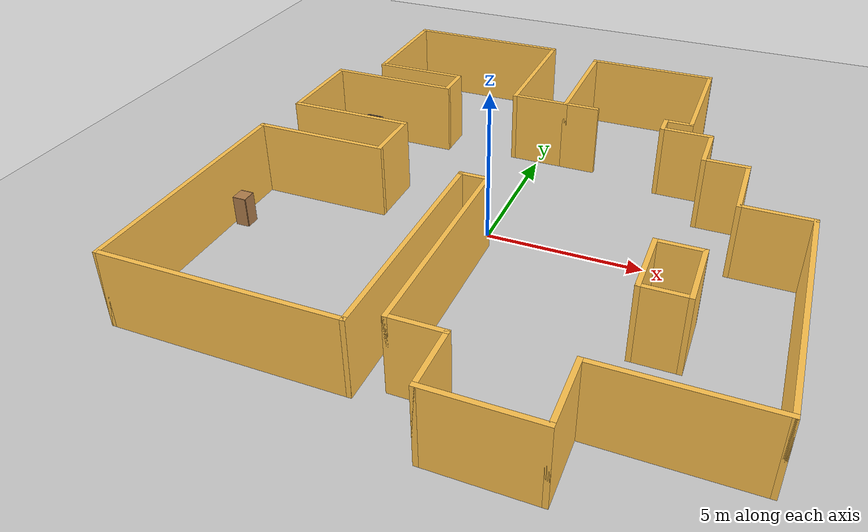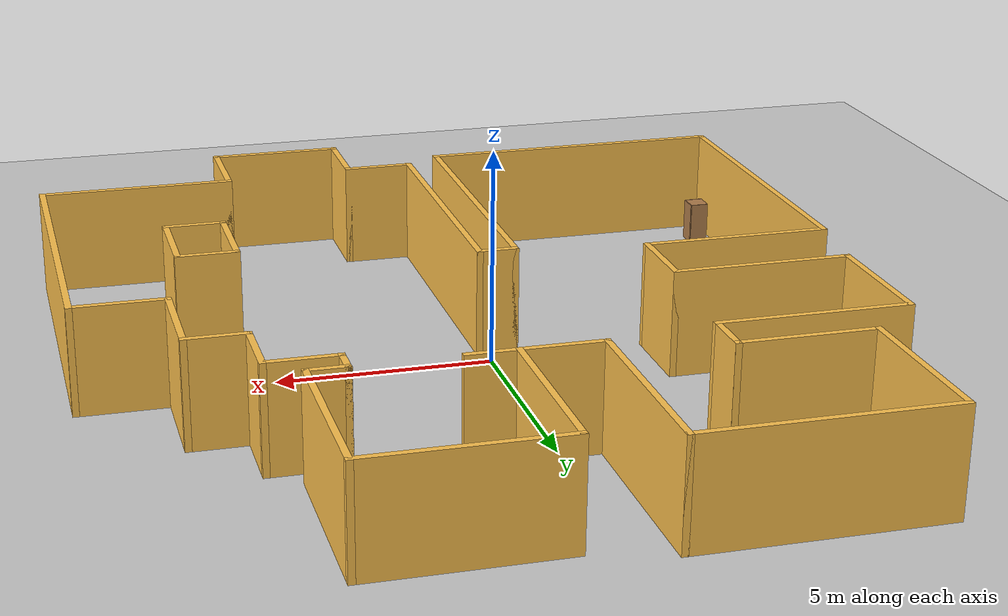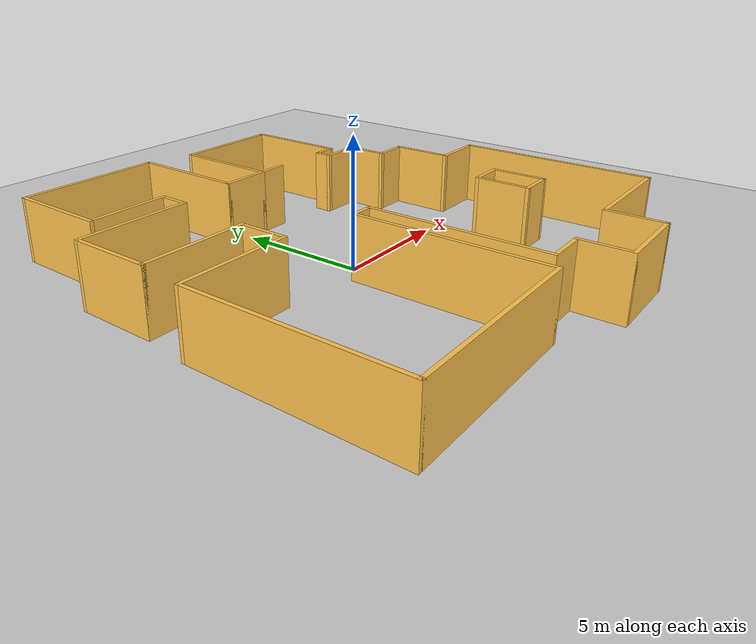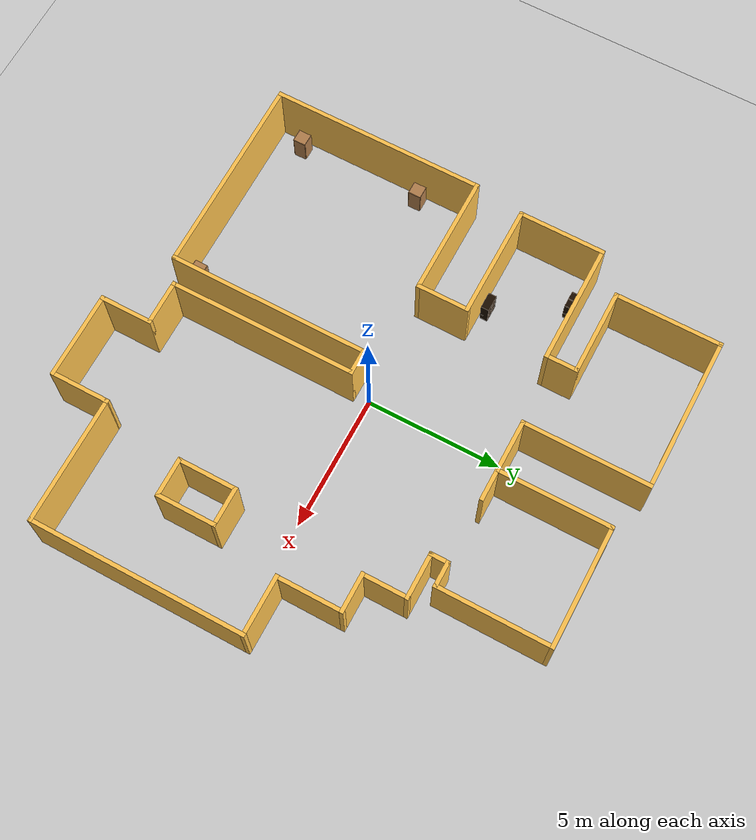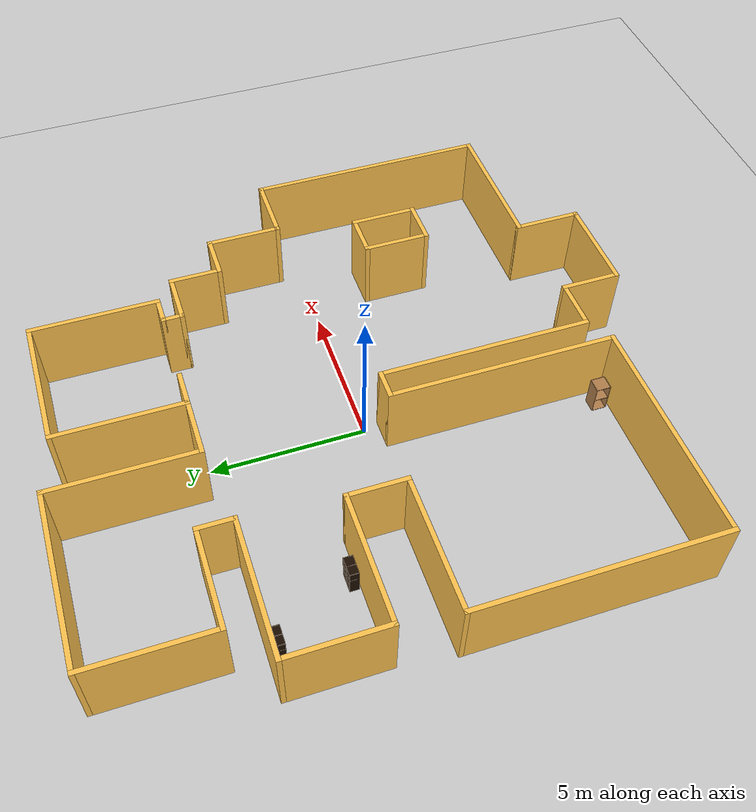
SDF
<sdf version="1.6">
 <world name="default">
  <light name="sun" type="directional">
   <pose>0 0 10 0 -0 0</pose>
   <diffuse>0.8 0.8 0.8 1</diffuse>
   <specular>0.2 0.2 0.2 1</specular>
   <attenuation>
    <range>1000</range>
    <constant>0.9</constant>
    <linear>0.01</linear>
    <quadratic>0.001</quadratic>
   </attenuation>
   <direction>-0.5 0.1 -0.9</direction>
  </light>
  <model name="ground_plane">
   <static>1</static>
   <link name="link">
    <collision name="collision">
     <geometry><plane><normal>0 0 1</normal><size>100 100</size></plane></geometry>
     <surface>
      <contact><collide_bitmask>65535</collide_bitmask></contact>
      <friction><ode><mu>100</mu><mu2>50</mu2></ode></friction>
     </surface>
    </collision>
    <visual name="visual">
     <cast_shadows>0</cast_shadows>
     <geometry><plane><normal>0 0 1</normal><size>100 100</size></plane></geometry>
     <material>
      <script><uri>file://media/materials/scripts/gazebo.material</uri><name>Gazebo/Grey</name></script>
     </material>
    </visual>
   </link>
  </model>
  <gravity>0 0 -9.8</gravity>
  <magnetic_field>6e-06 2.3e-05 -4.2e-05</magnetic_field>
  <atmosphere type="adiabatic"/>
  <physics name="default_physics" default="0" type="ode">
   <max_step_size>0.001</max_step_size>
   <real_time_factor>1</real_time_factor>
   <real_time_update_rate>1000</real_time_update_rate>
  </physics>
  <scene><ambient>0.4 0.4 0.4 1</ambient><background>0.7 0.7 0.7 1</background><shadows>1</shadows></scene>
  <audio><device>default</device></audio>
  <spherical_coordinates>
   <surface_model>EARTH_WGS84</surface_model>
   <latitude_deg>0</latitude_deg>
   <longitude_deg>0</longitude_deg>
   <elevation>0</elevation>
   <heading_deg>0</heading_deg>
  </spherical_coordinates>
  <model name="map_112">
   <pose>0.711208 0.280525 0 0 -0 0</pose>
   <link name="Wall_10">
    <collision name="Wall_10_Collision">
     <geometry><box><size>1.25 0.15 2.5</size></box></geometry>
     <pose>0 0 1.25 0 -0 0</pose>
    </collision>
    <visual name="Wall_10_Visual">
     <pose>0 0 1.25 0 -0 0</pose>
     <geometry><box><size>1.25 0.15 2.5</size></box></geometry>
     <material>
      <script><uri>file://media/materials/scripts/gazebo.material</uri><name>Gazebo/Grey</name></script>
      <ambient>1 0.764706 0.305882 1</ambient>
     </material>
     <meta><layer>0</layer></meta>
    </visual>
    <pose>-4.15 5.15 0 0 -0 -1.5708</pose>
   </link>
   <link name="Wall_11">
    <collision name="Wall_11_Collision">
     <geometry><box><size>4.5 0.15 2.5</size></box></geometry>
     <pose>0 0 1.25 0 -0 0</pose>
    </collision>
    <visual name="Wall_11_Visual">
     <pose>0 0 1.25 0 -0 0</pose>
     <geometry><box><size>4.5 0.15 2.5</size></box></geometry>
     <material>
      <script><uri>file://media/materials/scripts/gazebo.material</uri><name>Gazebo/Grey</name></script>
      <ambient>1 0.764706 0.305882 1</ambient>
     </material>
     <meta><layer>0</layer></meta>
    </visual>
    <pose>-6.325 4.6 0 0 -0 3.14159</pose>
   </link>
   <link name="Wall_12">
    <collision name="Wall_12_Collision">
     <geometry><box><size>3.25 0.15 2.5</size></box></geometry>
     <pose>0 0 1.25 0 -0 0</pose>
    </collision>
    <visual name="Wall_12_Visual">
     <pose>0 0 1.25 0 -0 0</pose>
     <geometry><box><size>3.25 0.15 2.5</size></box></geometry>
     <material>
      <script><uri>file://media/materials/scripts/gazebo.material</uri><name>Gazebo/Grey</name></script>
      <ambient>1 0.764706 0.305882 1</ambient>
     </material>
     <meta><layer>0</layer></meta>
    </visual>
    <pose>-8.5 3.05 0 0 -0 -1.5708</pose>
   </link>
   <link name="Wall_13">
    <collision name="Wall_13_Collision">
     <geometry><box><size>4.25 0.15 2.5</size></box></geometry>
     <pose>0 0 1.25 0 -0 0</pose>
    </collision>
    <visual name="Wall_13_Visual">
     <pose>0 0 1.25 0 -0 0</pose>
     <geometry><box><size>4.25 0.15 2.5</size></box></geometry>
     <material>
      <script><uri>file://media/materials/scripts/gazebo.material</uri><name>Gazebo/Grey</name></script>
      <ambient>1 0.764706 0.305882 1</ambient>
     </material>
     <meta><layer>0</layer></meta>
    </visual>
    <pose>-6.45 1.5 0 0 -0 0</pose>
   </link>
   <link name="Wall_14">
    <collision name="Wall_14_Collision">
     <geometry><box><size>2 0.15 2.5</size></box></geometry>
     <pose>0 0 1.25 0 -0 0</pose>
    </collision>
    <visual name="Wall_14_Visual">
     <pose>0 0 1.25 0 -0 0</pose>
     <geometry><box><size>2 0.15 2.5</size></box></geometry>
     <material>
      <script><uri>file://media/materials/scripts/gazebo.material</uri><name>Gazebo/Grey</name></script>
      <ambient>1 0.764706 0.305882 1</ambient>
     </material>
     <meta><layer>0</layer></meta>
    </visual>
    <pose>-4.4 0.575 0 0 -0 -1.5708</pose>
   </link>
   <link name="Wall_15">
    <collision name="Wall_15_Collision">
     <geometry><box><size>4.5 0.15 2.5</size></box></geometry>
     <pose>0 0 1.25 0 -0 0</pose>
    </collision>
    <visual name="Wall_15_Visual">
     <pose>0 0 1.25 0 -0 0</pose>
     <geometry><box><size>4.5 0.15 2.5</size></box></geometry>
     <material>
      <script><uri>file://media/materials/scripts/gazebo.material</uri><name>Gazebo/Grey</name></script>
      <ambient>1 0.764706 0.305882 1</ambient>
     </material>
     <meta><layer>0</layer></meta>
    </visual>
    <pose>-6.575 -0.35 0 0 -0 3.14159</pose>
   </link>
   <link name="Wall_16">
    <collision name="Wall_16_Collision">
     <geometry><box><size>8 0.15 2.5</size></box></geometry>
     <pose>0 0 1.25 0 -0 0</pose>
    </collision>
    <visual name="Wall_16_Visual">
     <pose>0 0 1.25 0 -0 0</pose>
     <geometry><box><size>8 0.15 2.5</size></box></geometry>
     <material>
      <script><uri>file://media/materials/scripts/gazebo.material</uri><name>Gazebo/Grey</name></script>
      <ambient>1 0.764706 0.305882 1</ambient>
     </material>
     <meta><layer>0</layer></meta>
    </visual>
    <pose>-8.75 -4.275 0 0 -0 -1.5708</pose>
   </link>
   <link name="Wall_17">
    <collision name="Wall_17_Collision">
     <geometry><box><size>7.5 0.15 2.5</size></box></geometry>
     <pose>0 0 1.25 0 -0 0</pose>
    </collision>
    <visual name="Wall_17_Visual">
     <pose>0 0 1.25 0 -0 0</pose>
     <geometry><box><size>7.5 0.15 2.5</size></box></geometry>
     <material>
      <script><uri>file://media/materials/scripts/gazebo.material</uri><name>Gazebo/Grey</name></script>
      <ambient>1 0.764706 0.305882 1</ambient>
     </material>
     <meta><layer>0</layer></meta>
    </visual>
    <pose>-5.075 -8.2 0 0 -0 0</pose>
   </link>
   <link name="Wall_18">
    <collision name="Wall_18_Collision">
     <geometry><box><size>7.5 0.15 2.5</size></box></geometry>
     <pose>0 0 1.25 0 -0 0</pose>
    </collision>
    <visual name="Wall_18_Visual">
     <pose>0 0 1.25 0 -0 0</pose>
     <geometry><box><size>7.5 0.15 2.5</size></box></geometry>
     <material>
      <script><uri>file://media/materials/scripts/gazebo.material</uri><name>Gazebo/Grey</name></script>
      <ambient>1 0.764706 0.305882 1</ambient>
     </material>
     <meta><layer>0</layer></meta>
    </visual>
    <pose>-1.4 -4.525 0 0 -0 1.5708</pose>
   </link>
   <link name="Wall_19">
    <collision name="Wall_19_Collision">
     <geometry><box><size>1 0.15 2.5</size></box></geometry>
     <pose>0 0 1.25 0 -0 0</pose>
    </collision>
    <visual name="Wall_19_Visual">
     <pose>0 0 1.25 0 -0 0</pose>
     <geometry><box><size>1 0.15 2.5</size></box></geometry>
     <material>
      <script><uri>file://media/materials/scripts/gazebo.material</uri><name>Gazebo/Grey</name></script>
      <ambient>1 0.764706 0.305882 1</ambient>
     </material>
     <meta><layer>0</layer></meta>
    </visual>
    <pose>-0.975 -0.85 0 0 -0 0</pose>
   </link>
   <link name="Wall_20">
    <collision name="Wall_20_Collision">
     <geometry><box><size>7 0.15 2.5</size></box></geometry>
     <pose>0 0 1.25 0 -0 0</pose>
    </collision>
    <visual name="Wall_20_Visual">
     <pose>0 0 1.25 0 -0 0</pose>
     <geometry><box><size>7 0.15 2.5</size></box></geometry>
     <material>
      <script><uri>file://media/materials/scripts/gazebo.material</uri><name>Gazebo/Grey</name></script>
      <ambient>1 0.764706 0.305882 1</ambient>
     </material>
     <meta><layer>0</layer></meta>
    </visual>
    <pose>-0.55 -4.275 0 0 -0 -1.5708</pose>
   </link>
   <link name="Wall_21">
    <collision name="Wall_21_Collision">
     <geometry><box><size>1.75 0.15 2.5</size></box></geometry>
     <pose>0 0 1.25 0 -0 0</pose>
    </collision>
    <visual name="Wall_21_Visual">
     <pose>0 0 1.25 0 -0 0</pose>
     <geometry><box><size>1.75 0.15 2.5</size></box></geometry>
     <material>
      <script><uri>file://media/materials/scripts/gazebo.material</uri><name>Gazebo/Grey</name></script>
      <ambient>1 0.764706 0.305882 1</ambient>
     </material>
     <meta><layer>0</layer></meta>
    </visual>
    <pose>0.25 -7.7 0 0 -0 0</pose>
   </link>
   <link name="Wall_24">
    <collision name="Wall_24_Collision">
     <geometry><box><size>2 0.15 2.5</size></box></geometry>
     <pose>0 0 1.25 0 -0 0</pose>
    </collision>
    <visual name="Wall_24_Visual">
     <pose>0 0 1.25 0 -0 0</pose>
     <geometry><box><size>2 0.15 2.5</size></box></geometry>
     <material>
      <script><uri>file://media/materials/scripts/gazebo.material</uri><name>Gazebo/Grey</name></script>
      <ambient>1 0.764706 0.305882 1</ambient>
     </material>
     <meta><layer>0</layer></meta>
    </visual>
    <pose>1.05 -8.625 0 0 -0 -1.5708</pose>
   </link>
   <link name="Wall_25">
    <collision name="Wall_25_Collision">
     <geometry><box><size>3.25 0.15 2.5</size></box></geometry>
     <pose>0 0 1.25 0 -0 0</pose>
    </collision>
    <visual name="Wall_25_Visual">
     <pose>0 0 1.25 0 -0 0</pose>
     <geometry><box><size>3.25 0.15 2.5</size></box></geometry>
     <material>
      <script><uri>file://media/materials/scripts/gazebo.material</uri><name>Gazebo/Grey</name></script>
      <ambient>1 0.764706 0.305882 1</ambient>
     </material>
     <meta><layer>0</layer></meta>
    </visual>
    <pose>2.6 -9.55 0 0 -0 0</pose>
   </link>
   <link name="Wall_26">
    <collision name="Wall_26_Collision">
     <geometry><box><size>2.25 0.15 2.5</size></box></geometry>
     <pose>0 0 1.25 0 -0 0</pose>
    </collision>
    <visual name="Wall_26_Visual">
     <pose>0 0 1.25 0 -0 0</pose>
     <geometry><box><size>2.25 0.15 2.5</size></box></geometry>
     <material>
      <script><uri>file://media/materials/scripts/gazebo.material</uri><name>Gazebo/Grey</name></script>
      <ambient>1 0.764706 0.305882 1</ambient>
     </material>
     <meta><layer>0</layer></meta>
    </visual>
    <pose>4.15 -8.5 0 0 -0 1.5708</pose>
   </link>
   <link name="Wall_27">
    <collision name="Wall_27_Collision">
     <geometry><box><size>4.75 0.15 2.5</size></box></geometry>
     <pose>0 0 1.25 0 -0 0</pose>
    </collision>
    <visual name="Wall_27_Visual">
     <pose>0 0 1.25 0 -0 0</pose>
     <geometry><box><size>4.75 0.15 2.5</size></box></geometry>
     <material>
      <script><uri>file://media/materials/scripts/gazebo.material</uri><name>Gazebo/Grey</name></script>
      <ambient>1 0.764706 0.305882 1</ambient>
     </material>
     <meta><layer>0</layer></meta>
    </visual>
    <pose>6.45 -7.45 0 0 -0 0</pose>
   </link>
   <link name="Wall_28">
    <collision name="Wall_28_Collision">
     <geometry><box><size>8 0.15 2.5</size></box></geometry>
     <pose>0 0 1.25 0 -0 0</pose>
    </collision>
    <visual name="Wall_28_Visual">
     <pose>0 0 1.25 0 -0 0</pose>
     <geometry><box><size>8 0.15 2.5</size></box></geometry>
     <material>
      <script><uri>file://media/materials/scripts/gazebo.material</uri><name>Gazebo/Grey</name></script>
      <ambient>1 0.764706 0.305882 1</ambient>
     </material>
     <meta><layer>0</layer></meta>
    </visual>
    <pose>8.75 -3.525 0 0 -0 1.5708</pose>
   </link>
   <link name="Wall_29">
    <collision name="Wall_29_Collision">
     <geometry><box><size>2.25 0.15 2.5</size></box></geometry>
     <pose>0 0 1.25 0 -0 0</pose>
    </collision>
    <visual name="Wall_29_Visual">
     <pose>0 0 1.25 0 -0 0</pose>
     <geometry><box><size>2.25 0.15 2.5</size></box></geometry>
     <material>
      <script><uri>file://media/materials/scripts/gazebo.material</uri><name>Gazebo/Grey</name></script>
      <ambient>1 0.764706 0.305882 1</ambient>
     </material>
     <meta><layer>0</layer></meta>
    </visual>
    <pose>7.7 0.4 0 0 -0 3.14159</pose>
   </link>
   <link name="Wall_35">
    <collision name="Wall_35_Collision">
     <geometry><box><size>2.5 0.15 2.5</size></box></geometry>
     <pose>0 0 1.25 0 -0 0</pose>
    </collision>
    <visual name="Wall_35_Visual">
     <pose>0 0 1.25 0 -0 0</pose>
     <geometry><box><size>2.5 0.15 2.5</size></box></geometry>
     <material>
      <script><uri>file://media/materials/scripts/gazebo.material</uri><name>Gazebo/Grey</name></script>
      <ambient>1 0.764706 0.305882 1</ambient>
     </material>
     <meta><layer>0</layer></meta>
    </visual>
    <pose>6.65 1.575 0 0 -0 1.5708</pose>
   </link>
   <link name="Wall_36">
    <collision name="Wall_36_Collision">
     <geometry><box><size>1.5 0.15 2.5</size></box></geometry>
     <pose>0 0 1.25 0 -0 0</pose>
    </collision>
    <visual name="Wall_36_Visual">
     <pose>0 0 1.25 0 -0 0</pose>
     <geometry><box><size>1.5 0.15 2.5</size></box></geometry>
     <material>
      <script><uri>file://media/materials/scripts/gazebo.material</uri><name>Gazebo/Grey</name></script>
      <ambient>1 0.764706 0.305882 1</ambient>
     </material>
     <meta><layer>0</layer></meta>
    </visual>
    <pose>5.975 2.75 0 0 -0 3.14159</pose>
   </link>
   <link name="Wall_37">
    <collision name="Wall_37_Collision">
     <geometry><box><size>1.75 0.15 2.5</size></box></geometry>
     <pose>0 0 1.25 0 -0 0</pose>
    </collision>
    <visual name="Wall_37_Visual">
     <pose>0 0 1.25 0 -0 0</pose>
     <geometry><box><size>1.75 0.15 2.5</size></box></geometry>
     <material>
      <script><uri>file://media/materials/scripts/gazebo.material</uri><name>Gazebo/Grey</name></script>
      <ambient>1 0.764706 0.305882 1</ambient>
     </material>
     <meta><layer>0</layer></meta>
    </visual>
    <pose>5.3 3.55 0 0 -0 1.5708</pose>
   </link>
   <link name="Wall_42">
    <collision name="Wall_42_Collision">
     <geometry><box><size>1.75 0.15 2.5</size></box></geometry>
     <pose>0 0 1.25 0 -0 0</pose>
    </collision>
    <visual name="Wall_42_Visual">
     <pose>0 0 1.25 0 -0 0</pose>
     <geometry><box><size>1.75 0.15 2.5</size></box></geometry>
     <material>
      <script><uri>file://media/materials/scripts/gazebo.material</uri><name>Gazebo/Grey</name></script>
      <ambient>1 0.764706 0.305882 1</ambient>
     </material>
     <meta><layer>0</layer></meta>
    </visual>
    <pose>4.5 4.35 0 0 -0 3.14159</pose>
   </link>
   <link name="Wall_43">
    <collision name="Wall_43_Collision">
     <geometry><box><size>0.75 0.15 2.5</size></box></geometry>
     <pose>0 0 1.25 0 -0 0</pose>
    </collision>
    <visual name="Wall_43_Visual">
     <pose>0 0 1.25 0 -0 0</pose>
     <geometry><box><size>0.75 0.15 2.5</size></box></geometry>
     <material>
      <script><uri>file://media/materials/scripts/gazebo.material</uri><name>Gazebo/Grey</name></script>
      <ambient>1 0.764706 0.305882 1</ambient>
     </material>
     <meta><layer>0</layer></meta>
    </visual>
    <pose>3.7 4.65 0 0 -0 1.5708</pose>
   </link>
   <link name="Wall_44">
    <collision name="Wall_44_Collision">
     <geometry><box><size>1 0.15 2.5</size></box></geometry>
     <pose>0 0 1.25 0 -0 0</pose>
    </collision>
    <visual name="Wall_44_Visual">
     <pose>0 0 1.25 0 -0 0</pose>
     <geometry><box><size>1 0.15 2.5</size></box></geometry>
     <material>
      <script><uri>file://media/materials/scripts/gazebo.material</uri><name>Gazebo/Grey</name></script>
      <ambient>1 0.764706 0.305882 1</ambient>
     </material>
     <meta><layer>0</layer></meta>
    </visual>
    <pose>4.125 4.95 0 0 -0 0</pose>
   </link>
   <link name="Wall_45">
    <collision name="Wall_45_Collision">
     <geometry><box><size>4.25 0.15 2.5</size></box></geometry>
     <pose>0 0 1.25 0 -0 0</pose>
    </collision>
    <visual name="Wall_45_Visual">
     <pose>0 0 1.25 0 -0 0</pose>
     <geometry><box><size>4.25 0.15 2.5</size></box></geometry>
     <material>
      <script><uri>file://media/materials/scripts/gazebo.material</uri><name>Gazebo/Grey</name></script>
      <ambient>1 0.764706 0.305882 1</ambient>
     </material>
     <meta><layer>0</layer></meta>
    </visual>
    <pose>4.55 7 0 0 -0 1.5708</pose>
   </link>
   <link name="Wall_46">
    <collision name="Wall_46_Collision">
     <geometry><box><size>4.5 0.15 2.5</size></box></geometry>
     <pose>0 0 1.25 0 -0 0</pose>
    </collision>
    <visual name="Wall_46_Visual">
     <pose>0 0 1.25 0 -0 0</pose>
     <geometry><box><size>4.5 0.15 2.5</size></box></geometry>
     <material>
      <script><uri>file://media/materials/scripts/gazebo.material</uri><name>Gazebo/Grey</name></script>
      <ambient>1 0.764706 0.305882 1</ambient>
     </material>
     <meta><layer>0</layer></meta>
    </visual>
    <pose>2.375 9.05 0 0 -0 3.14159</pose>
   </link>
   <link name="Wall_47">
    <collision name="Wall_47_Collision">
     <geometry><box><size>4.25 0.15 2.5</size></box></geometry>
     <pose>0 0 1.25 0 -0 0</pose>
    </collision>
    <visual name="Wall_47_Visual">
     <pose>0 0 1.25 0 -0 0</pose>
     <geometry><box><size>4.25 0.15 2.5</size></box></geometry>
     <material>
      <script><uri>file://media/materials/scripts/gazebo.material</uri><name>Gazebo/Grey</name></script>
      <ambient>1 0.764706 0.305882 1</ambient>
     </material>
     <meta><layer>0</layer></meta>
    </visual>
    <pose>0.2 7 0 0 -0 -1.5708</pose>
   </link>
   <link name="Wall_48">
    <collision name="Wall_48_Collision">
     <geometry><box><size>1.25 0.15 2.5</size></box></geometry>
     <pose>0 0 1.25 0 -0 0</pose>
    </collision>
    <visual name="Wall_48_Visual">
     <pose>0 0 1.25 0 -0 0</pose>
     <geometry><box><size>1.25 0.15 2.5</size></box></geometry>
     <material>
      <script><uri>file://media/materials/scripts/gazebo.material</uri><name>Gazebo/Grey</name></script>
      <ambient>1 0.764706 0.305882 1</ambient>
     </material>
     <meta><layer>0</layer></meta>
    </visual>
    <pose>0.75 4.95 0 0 -0 0</pose>
   </link>
   <link name="Wall_52">
    <collision name="Wall_52_Collision">
     <geometry><box><size>5.75 0.15 2.5</size></box></geometry>
     <pose>0 0 1.25 0 -0 0</pose>
    </collision>
    <visual name="Wall_52_Visual">
     <pose>0 0 1.25 0 -0 0</pose>
     <geometry><box><size>5.75 0.15 2.5</size></box></geometry>
     <material>
      <script><uri>file://media/materials/scripts/gazebo.material</uri><name>Gazebo/Grey</name></script>
      <ambient>1 0.764706 0.305882 1</ambient>
     </material>
     <meta><layer>0</layer></meta>
    </visual>
    <pose>-4.45 9.55 0 0 -0 0</pose>
   </link>
   <link name="Wall_53">
    <collision name="Wall_53_Collision">
     <geometry><box><size>4.75 0.15 2.5</size></box></geometry>
     <pose>0 0 1.25 0 -0 0</pose>
    </collision>
    <visual name="Wall_53_Visual">
     <pose>0 0 1.25 0 -0 0</pose>
     <geometry><box><size>4.75 0.15 2.5</size></box></geometry>
     <material>
      <script><uri>file://media/materials/scripts/gazebo.material</uri><name>Gazebo/Grey</name></script>
      <ambient>1 0.764706 0.305882 1</ambient>
     </material>
     <meta><layer>0</layer></meta>
    </visual>
    <pose>-1.65 7.25 0 0 -0 -1.5708</pose>
   </link>
   <link name="Wall_54">
    <collision name="Wall_54_Collision">
     <geometry><box><size>2 0.15 2.5</size></box></geometry>
     <pose>0 0 1.25 0 -0 0</pose>
    </collision>
    <visual name="Wall_54_Visual">
     <pose>0 0 1.25 0 -0 0</pose>
     <geometry><box><size>2 0.15 2.5</size></box></geometry>
     <material>
      <script><uri>file://media/materials/scripts/gazebo.material</uri><name>Gazebo/Grey</name></script>
      <ambient>1 0.764706 0.305882 1</ambient>
     </material>
     <meta><layer>0</layer></meta>
    </visual>
    <pose>-0.725 4.95 0 0 -0 0</pose>
   </link>
   <link name="Wall_56">
    <collision name="Wall_56_Collision">
     <geometry><box><size>2.25 0.15 2.5</size></box></geometry>
     <pose>0 0 1.25 0 -0 0</pose>
    </collision>
    <visual name="Wall_56_Visual">
     <pose>0 0 1.25 0 -0 0</pose>
     <geometry><box><size>2.25 0.15 2.5</size></box></geometry>
     <material>
      <script><uri>file://media/materials/scripts/gazebo.material</uri><name>Gazebo/Grey</name></script>
      <ambient>1 0.764706 0.305882 1</ambient>
     </material>
     <meta><layer>0</layer></meta>
    </visual>
    <pose>4.77046 -3.24625 0 0 -0 -1.5708</pose>
   </link>
   <link name="Wall_57">
    <collision name="Wall_57_Collision">
     <geometry><box><size>1.5 0.15 2.5</size></box></geometry>
     <pose>0 0 1.25 0 -0 0</pose>
    </collision>
    <visual name="Wall_57_Visual">
     <pose>0 0 1.25 0 -0 0</pose>
     <geometry><box><size>1.5 0.15 2.5</size></box></geometry>
     <material>
      <script><uri>file://media/materials/scripts/gazebo.material</uri><name>Gazebo/Grey</name></script>
      <ambient>1 0.764706 0.305882 1</ambient>
     </material>
     <meta><layer>0</layer></meta>
    </visual>
    <pose>5.44545 -4.29624 0 0 -0 0</pose>
   </link>
   <link name="Wall_58">
    <collision name="Wall_58_Collision">
     <geometry><box><size>2.25 0.15 2.5</size></box></geometry>
     <pose>0 0 1.25 0 -0 0</pose>
    </collision>
    <visual name="Wall_58_Visual">
     <pose>0 0 1.25 0 -0 0</pose>
     <geometry><box><size>2.25 0.15 2.5</size></box></geometry>
     <material>
      <script><uri>file://media/materials/scripts/gazebo.material</uri><name>Gazebo/Grey</name></script>
      <ambient>1 0.764706 0.305882 1</ambient>
     </material>
     <meta><layer>0</layer></meta>
    </visual>
    <pose>6.12045 -3.24625 0 0 -0 1.5708</pose>
   </link>
   <link name="Wall_59">
    <collision name="Wall_59_Collision">
     <geometry><box><size>1.5 0.15 2.5</size></box></geometry>
     <pose>0 0 1.25 0 -0 0</pose>
    </collision>
    <visual name="Wall_59_Visual">
     <pose>0 0 1.25 0 -0 0</pose>
     <geometry><box><size>1.5 0.15 2.5</size></box></geometry>
     <material>
      <script><uri>file://media/materials/scripts/gazebo.material</uri><name>Gazebo/Grey</name></script>
      <ambient>1 0.764706 0.305882 1</ambient>
     </material>
     <meta><layer>0</layer></meta>
    </visual>
    <pose>5.44545 -2.19624 0 0 -0 3.14159</pose>
   </link>
   <link name="Wall_8">
    <collision name="Wall_8_Collision">
     <geometry><box><size>4 0.15 2.5</size></box></geometry>
     <pose>0 0 1.25 0 -0 0</pose>
    </collision>
    <visual name="Wall_8_Visual">
     <pose>0 0 1.25 0 -0 0</pose>
     <geometry><box><size>4 0.15 2.5</size></box></geometry>
     <material>
      <script><uri>file://media/materials/scripts/gazebo.material</uri><name>Gazebo/Grey</name></script>
      <ambient>1 0.764706 0.305882 1</ambient>
     </material>
     <meta><layer>0</layer></meta>
    </visual>
    <pose>-7.25 7.625 0 0 -0 -1.5708</pose>
   </link>
   <link name="Wall_9">
    <collision name="Wall_9_Collision">
     <geometry><box><size>3.25 0.15 2.5</size></box></geometry>
     <pose>0 0 1.25 0 -0 0</pose>
    </collision>
    <visual name="Wall_9_Visual">
     <pose>0 0 1.25 0 -0 0</pose>
     <geometry><box><size>3.25 0.15 2.5</size></box></geometry>
     <material>
      <script><uri>file://media/materials/scripts/gazebo.material</uri><name>Gazebo/Grey</name></script>
      <ambient>1 0.764706 0.305882 1</ambient>
     </material>
     <meta><layer>0</layer></meta>
    </visual>
    <pose>-5.7 5.7 0 0 -0 0</pose>
   </link>
   <static>1</static>
  </model>
  <model name="cabinet">
   <static>1</static>
   <link name="cabinet_bottom_plate">
    <inertial>
     <pose>0 0 -1 0 -0 0</pose>
     <inertia><ixx>2.05</ixx><ixy>0</ixy><ixz>0</ixz><iyy>2.05</iyy><iyz>0</iyz><izz>2.05</izz></inertia>
     <mass>25</mass>
    </inertial>
    <collision name="cabinet_bottom_plate_geom">
     <pose>0 0 0.01 0 -0 0</pose>
     <geometry><box><size>0.45 0.45 0.02</size></box></geometry>
    </collision>
    <visual name="cabinet_bottom_plate_geom_visual">
     <pose>0 0 0.01 0 -0 0</pose>
     <geometry><box><size>0.45 0.45 0.02</size></box></geometry>
     <material>
      <script><uri>file://media/materials/scripts/gazebo.material</uri><name>Gazebo/Wood</name></script>
     </material>
    </visual>
    <collision name="cabinet_bottom_plate_geom_cabinet_back_plate">
     <pose>0.235 0 0.51 0 -0 0</pose>
     <geometry><box><size>0.02 0.45 1.02</size></box></geometry>
    </collision>
    <visual name="cabinet_bottom_plate_geom_cabinet_back_plate_visual">
     <pose>0.235 0 0.51 0 -0 0</pose>
     <geometry><box><size>0.02 0.45 1.02</size></box></geometry>
     <material>
      <script><uri>file://media/materials/scripts/gazebo.material</uri><name>Gazebo/Wood</name></script>
     </material>
    </visual>
    <collision name="cabinet_bottom_plate_geom_cabinet_left_plate">
     <pose>0 0.235 0.51 0 -0 0</pose>
     <geometry><box><size>0.45 0.02 1.02</size></box></geometry>
    </collision>
    <visual name="cabinet_bottom_plate_geom_cabinet_left_plate_visual">
     <pose>0 0.235 0.51 0 -0 0</pose>
     <geometry><box><size>0.45 0.02 1.02</size></box></geometry>
     <material>
      <script><uri>file://media/materials/scripts/gazebo.material</uri><name>Gazebo/Wood</name></script>
     </material>
    </visual>
    <collision name="cabinet_bottom_plate_geom_cabinet_middle_plate">
     <pose>0 0 0.51 0 -0 0</pose>
     <geometry><box><size>0.45 0.45 0.02</size></box></geometry>
    </collision>
    <visual name="cabinet_bottom_plate_geom_cabinet_middle_plate_visual">
     <pose>0 0 0.51 0 -0 0</pose>
     <geometry><box><size>0.45 0.45 0.02</size></box></geometry>
     <material>
      <script><uri>file://media/materials/scripts/gazebo.material</uri><name>Gazebo/Wood</name></script>
     </material>
    </visual>
    <collision name="cabinet_bottom_plate_geom_cabinet_right_plate">
     <pose>0 -0.235 0.51 0 -0 0</pose>
     <geometry><box><size>0.45 0.02 1.02</size></box></geometry>
    </collision>
    <visual name="cabinet_bottom_plate_geom_cabinet_right_plate_visual">
     <pose>0 -0.235 0.51 0 -0 0</pose>
     <geometry><box><size>0.45 0.02 1.02</size></box></geometry>
     <material>
      <script><uri>file://media/materials/scripts/gazebo.material</uri><name>Gazebo/Wood</name></script>
     </material>
    </visual>
    <collision name="cabinet_bottom_plate_geom_cabinet_top_plate">
     <pose>0 0 1.01 0 -0 0</pose>
     <geometry><box><size>0.45 0.45 0.02</size></box></geometry>
    </collision>
    <visual name="cabinet_bottom_plate_geom_cabinet_top_plate_visual">
     <pose>0 0 1.01 0 -0 0</pose>
     <geometry><box><size>0.45 0.45 0.02</size></box></geometry>
     <material>
      <script><uri>file://media/materials/scripts/gazebo.material</uri><name>Gazebo/Wood</name></script>
     </material>
    </visual>
   </link>
   <pose>-1.26428 -7.49469 0 0 -0 0</pose>
  </model>
  <model name="cabinet_0">
   <static>1</static>
   <link name="cabinet_bottom_plate">
    <inertial>
     <pose>0 0 -1 0 -0 0</pose>
     <inertia><ixx>2.05</ixx><ixy>0</ixy><ixz>0</ixz><iyy>2.05</iyy><iyz>0</iyz><izz>2.05</izz></inertia>
     <mass>25</mass>
    </inertial>
    <collision name="cabinet_bottom_plate_geom">
     <pose>0 0 0.01 0 -0 0</pose>
     <geometry><box><size>0.45 0.45 0.02</size></box></geometry>
    </collision>
    <visual name="cabinet_bottom_plate_geom_visual">
     <pose>0 0 0.01 0 -0 0</pose>
     <geometry><box><size>0.45 0.45 0.02</size></box></geometry>
     <material>
      <script><uri>file://media/materials/scripts/gazebo.material</uri><name>Gazebo/Wood</name></script>
     </material>
    </visual>
    <collision name="cabinet_bottom_plate_geom_cabinet_back_plate">
     <pose>0.235 0 0.51 0 -0 0</pose>
     <geometry><box><size>0.02 0.45 1.02</size></box></geometry>
    </collision>
    <visual name="cabinet_bottom_plate_geom_cabinet_back_plate_visual">
     <pose>0.235 0 0.51 0 -0 0</pose>
     <geometry><box><size>0.02 0.45 1.02</size></box></geometry>
     <material>
      <script><uri>file://media/materials/scripts/gazebo.material</uri><name>Gazebo/Wood</name></script>
     </material>
    </visual>
    <collision name="cabinet_bottom_plate_geom_cabinet_left_plate">
     <pose>0 0.235 0.51 0 -0 0</pose>
     <geometry><box><size>0.45 0.02 1.02</size></box></geometry>
    </collision>
    <visual name="cabinet_bottom_plate_geom_cabinet_left_plate_visual">
     <pose>0 0.235 0.51 0 -0 0</pose>
     <geometry><box><size>0.45 0.02 1.02</size></box></geometry>
     <material>
      <script><uri>file://media/materials/scripts/gazebo.material</uri><name>Gazebo/Wood</name></script>
     </material>
    </visual>
    <collision name="cabinet_bottom_plate_geom_cabinet_middle_plate">
     <pose>0 0 0.51 0 -0 0</pose>
     <geometry><box><size>0.45 0.45 0.02</size></box></geometry>
    </collision>
    <visual name="cabinet_bottom_plate_geom_cabinet_middle_plate_visual">
     <pose>0 0 0.51 0 -0 0</pose>
     <geometry><box><size>0.45 0.45 0.02</size></box></geometry>
     <material>
      <script><uri>file://media/materials/scripts/gazebo.material</uri><name>Gazebo/Wood</name></script>
     </material>
    </visual>
    <collision name="cabinet_bottom_plate_geom_cabinet_right_plate">
     <pose>0 -0.235 0.51 0 -0 0</pose>
     <geometry><box><size>0.45 0.02 1.02</size></box></geometry>
    </collision>
    <visual name="cabinet_bottom_plate_geom_cabinet_right_plate_visual">
     <pose>0 -0.235 0.51 0 -0 0</pose>
     <geometry><box><size>0.45 0.02 1.02</size></box></geometry>
     <material>
      <script><uri>file://media/materials/scripts/gazebo.material</uri><name>Gazebo/Wood</name></script>
     </material>
    </visual>
    <collision name="cabinet_bottom_plate_geom_cabinet_top_plate">
     <pose>0 0 1.01 0 -0 0</pose>
     <geometry><box><size>0.45 0.45 0.02</size></box></geometry>
    </collision>
    <visual name="cabinet_bottom_plate_geom_cabinet_top_plate_visual">
     <pose>0 0 1.01 0 -0 0</pose>
     <geometry><box><size>0.45 0.45 0.02</size></box></geometry>
     <material>
      <script><uri>file://media/materials/scripts/gazebo.material</uri><name>Gazebo/Wood</name></script>
     </material>
    </visual>
   </link>
   <pose>-7.64034 -2.16353 0 0 -0 0</pose>
  </model>
  <model name="cabinet_1">
   <static>1</static>
   <link name="cabinet_bottom_plate">
    <inertial>
     <pose>0 0 -1 0 -0 0</pose>
     <inertia><ixx>2.05</ixx><ixy>0</ixy><ixz>0</ixz><iyy>2.05</iyy><iyz>0</iyz><izz>2.05</izz></inertia>
     <mass>25</mass>
    </inertial>
    <collision name="cabinet_bottom_plate_geom">
     <pose>0 0 0.01 0 -0 0</pose>
     <geometry><box><size>0.45 0.45 0.02</size></box></geometry>
    </collision>
    <visual name="cabinet_bottom_plate_geom_visual">
     <pose>0 0 0.01 0 -0 0</pose>
     <geometry><box><size>0.45 0.45 0.02</size></box></geometry>
     <material>
      <script><uri>file://media/materials/scripts/gazebo.material</uri><name>Gazebo/Wood</name></script>
     </material>
    </visual>
    <collision name="cabinet_bottom_plate_geom_cabinet_back_plate">
     <pose>0.235 0 0.51 0 -0 0</pose>
     <geometry><box><size>0.02 0.45 1.02</size></box></geometry>
    </collision>
    <visual name="cabinet_bottom_plate_geom_cabinet_back_plate_visual">
     <pose>0.235 0 0.51 0 -0 0</pose>
     <geometry><box><size>0.02 0.45 1.02</size></box></geometry>
     <material>
      <script><uri>file://media/materials/scripts/gazebo.material</uri><name>Gazebo/Wood</name></script>
     </material>
    </visual>
    <collision name="cabinet_bottom_plate_geom_cabinet_left_plate">
     <pose>0 0.235 0.51 0 -0 0</pose>
     <geometry><box><size>0.45 0.02 1.02</size></box></geometry>
    </collision>
    <visual name="cabinet_bottom_plate_geom_cabinet_left_plate_visual">
     <pose>0 0.235 0.51 0 -0 0</pose>
     <geometry><box><size>0.45 0.02 1.02</size></box></geometry>
     <material>
      <script><uri>file://media/materials/scripts/gazebo.material</uri><name>Gazebo/Wood</name></script>
     </material>
    </visual>
    <collision name="cabinet_bottom_plate_geom_cabinet_middle_plate">
     <pose>0 0 0.51 0 -0 0</pose>
     <geometry><box><size>0.45 0.45 0.02</size></box></geometry>
    </collision>
    <visual name="cabinet_bottom_plate_geom_cabinet_middle_plate_visual">
     <pose>0 0 0.51 0 -0 0</pose>
     <geometry><box><size>0.45 0.45 0.02</size></box></geometry>
     <material>
      <script><uri>file://media/materials/scripts/gazebo.material</uri><name>Gazebo/Wood</name></script>
     </material>
    </visual>
    <collision name="cabinet_bottom_plate_geom_cabinet_right_plate">
     <pose>0 -0.235 0.51 0 -0 0</pose>
     <geometry><box><size>0.45 0.02 1.02</size></box></geometry>
    </collision>
    <visual name="cabinet_bottom_plate_geom_cabinet_right_plate_visual">
     <pose>0 -0.235 0.51 0 -0 0</pose>
     <geometry><box><size>0.45 0.02 1.02</size></box></geometry>
     <material>
      <script><uri>file://media/materials/scripts/gazebo.material</uri><name>Gazebo/Wood</name></script>
     </material>
    </visual>
    <collision name="cabinet_bottom_plate_geom_cabinet_top_plate">
     <pose>0 0 1.01 0 -0 0</pose>
     <geometry><box><size>0.45 0.45 0.02</size></box></geometry>
    </collision>
    <visual name="cabinet_bottom_plate_geom_cabinet_top_plate_visual">
     <pose>0 0 1.01 0 -0 0</pose>
     <geometry><box><size>0.45 0.45 0.02</size></box></geometry>
     <material>
      <script><uri>file://media/materials/scripts/gazebo.material</uri><name>Gazebo/Wood</name></script>
     </material>
    </visual>
   </link>
   <pose>-7.56449 -6.84765 0 0 -0 0</pose>
  </model>
  <model name="6_Cube_StorageE">
   <link name="Wall_0">
    <pose>0 0 0.01 0 -0 0</pose>
    <inertial>
     <mass>1.6201</mass>
     <inertia><ixx>0.0119</ixx><iyy>0.0631</iyy><izz>0.0513</izz><ixy>0</ixy><ixz>0</ixz><iyz>0</iyz></inertia>
    </inertial>
    <collision name="Wall_0_Collision"><geometry><box><size>0.616 0.296 0.02</size></box></geometry></collision>
    <visual name="Wall_0_Visual">
     <geometry><box><size>0.616 0.296 0.02</size></box></geometry>
     <material>
      <script><uri>file://media/materials/scripts/gazebo.material</uri><name>Gazebo/Grey</name></script>
      <ambient>0.105882 0.0509804 0 1</ambient>
     </material>
    </visual>
   </link>
   <joint name="0_2" type="fixed">
    <pose>-0.308 0 0 0 -0 0</pose>
    <parent>Wall_2</parent>
    <child>Wall_0</child>
    <axis>
     <xyz>1 0 0</xyz>
     <use_parent_model_frame>0</use_parent_model_frame>
     <limit><lower>-1e+16</lower><upper>1e+16</upper></limit>
    </axis>
   </joint>
   <joint name="0_12" type="fixed">
    <parent>Wall_12</parent>
    <child>Wall_0</child>
    <axis>
     <xyz>0 0 1</xyz>
     <use_parent_model_frame>0</use_parent_model_frame>
     <limit><lower>-1e+16</lower><upper>1e+16</upper></limit>
    </axis>
   </joint>
   <joint name="0_4" type="fixed">
    <pose>0.308 0 0 0 -0 0</pose>
    <parent>Wall_4</parent>
    <child>Wall_0</child>
    <axis>
     <xyz>1 0 0</xyz>
     <use_parent_model_frame>0</use_parent_model_frame>
     <limit><lower>-1e+16</lower><upper>1e+16</upper></limit>
    </axis>
   </joint>
   <link name="Wall_10">
    <pose>0 0 0.61 0 -0 0</pose>
    <inertial>
     <mass>1.6201</mass>
     <inertia><ixx>0.0119</ixx><iyy>0.0631</iyy><izz>0.0513</izz><ixy>0</ixy><ixz>0</ixz><iyz>0</iyz></inertia>
    </inertial>
    <collision name="Wall_10_Collision"><geometry><box><size>0.616 0.296 0.02</size></box></geometry></collision>
    <visual name="Wall_10_Visual">
     <geometry><box><size>0.616 0.296 0.02</size></box></geometry>
     <material>
      <script><uri>file://media/materials/scripts/gazebo.material</uri><name>Gazebo/Grey</name></script>
      <ambient>0.105882 0.0509804 0 1</ambient>
     </material>
    </visual>
   </link>
   <joint name="10_2" type="fixed">
    <pose>-0.308 0 0 0 -0 0</pose>
    <parent>Wall_2</parent>
    <child>Wall_10</child>
    <axis>
     <xyz>1 0 0</xyz>
     <use_parent_model_frame>0</use_parent_model_frame>
     <limit><lower>-1e+16</lower><upper>1e+16</upper></limit>
    </axis>
   </joint>
   <joint name="10_12" type="fixed">
    <parent>Wall_12</parent>
    <child>Wall_10</child>
    <axis>
     <xyz>0 0 1</xyz>
     <use_parent_model_frame>0</use_parent_model_frame>
     <limit><lower>-1e+16</lower><upper>1e+16</upper></limit>
    </axis>
   </joint>
   <joint name="10_4" type="fixed">
    <pose>0.308 0 0 0 -0 0</pose>
    <parent>Wall_4</parent>
    <child>Wall_10</child>
    <axis>
     <xyz>1 0 0</xyz>
     <use_parent_model_frame>0</use_parent_model_frame>
     <limit><lower>-1e+16</lower><upper>1e+16</upper></limit>
    </axis>
   </joint>
   <link name="Wall_12">
    <pose>0 0 0.4575 0 -0 0</pose>
    <inertial>
     <mass>2.4065</mass>
     <inertia><ixx>0.0177</ixx><iyy>0.1855</iyy><izz>0.168</izz><ixy>0</ixy><ixz>0</ixz><iyz>0</iyz></inertia>
    </inertial>
    <collision name="Wall_12_Collision"><geometry><box><size>0.02 0.296 0.915</size></box></geometry></collision>
    <visual name="Wall_12_Visual">
     <geometry><box><size>0.02 0.296 0.915</size></box></geometry>
     <material>
      <script><uri>file://media/materials/scripts/gazebo.material</uri><name>Gazebo/Grey</name></script>
      <ambient>0.105882 0.0509804 0 1</ambient>
     </material>
    </visual>
   </link>
   <link name="Wall_2">
    <pose>-0.298 0 0.4575 0 -0 0</pose>
    <inertial>
     <mass>2.4065</mass>
     <inertia><ixx>0.0177</ixx><iyy>0.1855</iyy><izz>0.168</izz><ixy>0</ixy><ixz>0</ixz><iyz>0</iyz></inertia>
    </inertial>
    <collision name="Wall_2_Collision"><geometry><box><size>0.02 0.296 0.915</size></box></geometry></collision>
    <visual name="Wall_2_Visual">
     <geometry><box><size>0.02 0.296 0.915</size></box></geometry>
     <material>
      <script><uri>file://media/materials/scripts/gazebo.material</uri><name>Gazebo/Grey</name></script>
      <ambient>0.105882 0.0509804 0 1</ambient>
     </material>
    </visual>
   </link>
   <link name="Wall_4">
    <pose>0.298 0 0.4575 0 -0 0</pose>
    <inertial>
     <mass>2.4065</mass>
     <inertia><ixx>0.0177</ixx><iyy>0.1855</iyy><izz>0.168</izz><ixy>0</ixy><ixz>0</ixz><iyz>0</iyz></inertia>
    </inertial>
    <collision name="Wall_4_Collision"><geometry><box><size>0.02 0.296 0.915</size></box></geometry></collision>
    <visual name="Wall_4_Visual">
     <geometry><box><size>0.02 0.296 0.915</size></box></geometry>
     <material>
      <script><uri>file://media/materials/scripts/gazebo.material</uri><name>Gazebo/Grey</name></script>
      <ambient>0.105882 0.0509804 0 1</ambient>
     </material>
    </visual>
   </link>
   <link name="Wall_6">
    <pose>0 0 0.905 0 -0 0</pose>
    <inertial>
     <mass>1.6201</mass>
     <inertia><ixx>0.0119</ixx><iyy>0.0631</iyy><izz>0.0513</izz><ixy>0</ixy><ixz>0</ixz><iyz>0</iyz></inertia>
    </inertial>
    <collision name="Wall_6_Collision"><geometry><box><size>0.616 0.296 0.02</size></box></geometry></collision>
    <visual name="Wall_6_Visual">
     <geometry><box><size>0.616 0.296 0.02</size></box></geometry>
     <material>
      <script><uri>file://media/materials/scripts/gazebo.material</uri><name>Gazebo/Grey</name></script>
      <ambient>0.105882 0.0509804 0 1</ambient>
     </material>
    </visual>
   </link>
   <joint name="6_2" type="fixed">
    <pose>-0.308 0 0 0 -0 0</pose>
    <parent>Wall_2</parent>
    <child>Wall_6</child>
    <axis>
     <xyz>2 0 0</xyz>
     <use_parent_model_frame>0</use_parent_model_frame>
     <limit><lower>-1e+16</lower><upper>1e+16</upper></limit>
    </axis>
   </joint>
   <joint name="6_12" type="fixed">
    <parent>Wall_12</parent>
    <child>Wall_6</child>
    <axis>
     <xyz>0 0 1</xyz>
     <use_parent_model_frame>0</use_parent_model_frame>
     <limit><lower>-1e+16</lower><upper>1e+16</upper></limit>
    </axis>
   </joint>
   <joint name="6_4" type="fixed">
    <pose>0.308 0 0 0 -0 0</pose>
    <parent>Wall_4</parent>
    <child>Wall_6</child>
    <axis>
     <xyz>1 0 0</xyz>
     <use_parent_model_frame>0</use_parent_model_frame>
     <limit><lower>-1e+16</lower><upper>1e+16</upper></limit>
    </axis>
   </joint>
   <link name="Wall_8">
    <pose>0 0 0.305 0 -0 0</pose>
    <inertial>
     <mass>1.6201</mass>
     <inertia><ixx>0.0119</ixx><iyy>0.0631</iyy><izz>0.0513</izz><ixy>0</ixy><ixz>0</ixz><iyz>0</iyz></inertia>
    </inertial>
    <collision name="Wall_8_Collision"><geometry><box><size>0.616 0.296 0.02</size></box></geometry></collision>
    <visual name="Wall_8_Visual">
     <geometry><box><size>0.616 0.296 0.02</size></box></geometry>
     <material>
      <script><uri>file://media/materials/scripts/gazebo.material</uri><name>Gazebo/Grey</name></script>
      <ambient>0.105882 0.0509804 0 1</ambient>
     </material>
    </visual>
   </link>
   <joint name="8_2" type="fixed">
    <pose>-0.308 0 0 0 -0 0</pose>
    <parent>Wall_2</parent>
    <child>Wall_8</child>
    <axis>
     <xyz>1 0 0</xyz>
     <use_parent_model_frame>0</use_parent_model_frame>
     <limit><lower>-1e+16</lower><upper>1e+16</upper></limit>
    </axis>
   </joint>
   <joint name="8_12" type="fixed">
    <parent>Wall_12</parent>
    <child>Wall_8</child>
    <axis>
     <xyz>0 0 1</xyz>
     <use_parent_model_frame>0</use_parent_model_frame>
     <limit><lower>-1e+16</lower><upper>1e+16</upper></limit>
    </axis>
   </joint>
   <joint name="8_4" type="fixed">
    <pose>0.308 0 0 0 -0 0</pose>
    <parent>Wall_4</parent>
    <child>Wall_8</child>
    <axis>
     <xyz>1 0 0</xyz>
     <use_parent_model_frame>0</use_parent_model_frame>
     <limit><lower>-1e+16</lower><upper>1e+16</upper></limit>
    </axis>
   </joint>
   <static>1</static>
   <pose>-6.37911 4.60192 0 0 -0 0</pose>
  </model>
  <model name="6_Cube_StorageE_0">
   <link name="Wall_0">
    <pose>0 0 0.01 0 -0 0</pose>
    <inertial>
     <mass>1.6201</mass>
     <inertia><ixx>0.0119</ixx><iyy>0.0631</iyy><izz>0.0513</izz><ixy>0</ixy><ixz>0</ixz><iyz>0</iyz></inertia>
    </inertial>
    <collision name="Wall_0_Collision"><geometry><box><size>0.616 0.296 0.02</size></box></geometry></collision>
    <visual name="Wall_0_Visual">
     <geometry><box><size>0.616 0.296 0.02</size></box></geometry>
     <material>
      <script><uri>file://media/materials/scripts/gazebo.material</uri><name>Gazebo/Grey</name></script>
      <ambient>0.105882 0.0509804 0 1</ambient>
     </material>
    </visual>
   </link>
   <joint name="0_2" type="fixed">
    <pose>-0.308 0 0 0 -0 0</pose>
    <parent>Wall_2</parent>
    <child>Wall_0</child>
    <axis>
     <xyz>1 0 0</xyz>
     <use_parent_model_frame>0</use_parent_model_frame>
     <limit><lower>-1e+16</lower><upper>1e+16</upper></limit>
    </axis>
   </joint>
   <joint name="0_12" type="fixed">
    <parent>Wall_12</parent>
    <child>Wall_0</child>
    <axis>
     <xyz>0 0 1</xyz>
     <use_parent_model_frame>0</use_parent_model_frame>
     <limit><lower>-1e+16</lower><upper>1e+16</upper></limit>
    </axis>
   </joint>
   <joint name="0_4" type="fixed">
    <pose>0.308 0 0 0 -0 0</pose>
    <parent>Wall_4</parent>
    <child>Wall_0</child>
    <axis>
     <xyz>1 0 0</xyz>
     <use_parent_model_frame>0</use_parent_model_frame>
     <limit><lower>-1e+16</lower><upper>1e+16</upper></limit>
    </axis>
   </joint>
   <link name="Wall_10">
    <pose>0 0 0.61 0 -0 0</pose>
    <inertial>
     <mass>1.6201</mass>
     <inertia><ixx>0.0119</ixx><iyy>0.0631</iyy><izz>0.0513</izz><ixy>0</ixy><ixz>0</ixz><iyz>0</iyz></inertia>
    </inertial>
    <collision name="Wall_10_Collision"><geometry><box><size>0.616 0.296 0.02</size></box></geometry></collision>
    <visual name="Wall_10_Visual">
     <geometry><box><size>0.616 0.296 0.02</size></box></geometry>
     <material>
      <script><uri>file://media/materials/scripts/gazebo.material</uri><name>Gazebo/Grey</name></script>
      <ambient>0.105882 0.0509804 0 1</ambient>
     </material>
    </visual>
   </link>
   <joint name="10_2" type="fixed">
    <pose>-0.308 0 0 0 -0 0</pose>
    <parent>Wall_2</parent>
    <child>Wall_10</child>
    <axis>
     <xyz>1 0 0</xyz>
     <use_parent_model_frame>0</use_parent_model_frame>
     <limit><lower>-1e+16</lower><upper>1e+16</upper></limit>
    </axis>
   </joint>
   <joint name="10_12" type="fixed">
    <parent>Wall_12</parent>
    <child>Wall_10</child>
    <axis>
     <xyz>0 0 1</xyz>
     <use_parent_model_frame>0</use_parent_model_frame>
     <limit><lower>-1e+16</lower><upper>1e+16</upper></limit>
    </axis>
   </joint>
   <joint name="10_4" type="fixed">
    <pose>0.308 0 0 0 -0 0</pose>
    <parent>Wall_4</parent>
    <child>Wall_10</child>
    <axis>
     <xyz>1 0 0</xyz>
     <use_parent_model_frame>0</use_parent_model_frame>
     <limit><lower>-1e+16</lower><upper>1e+16</upper></limit>
    </axis>
   </joint>
   <link name="Wall_12">
    <pose>0 0 0.4575 0 -0 0</pose>
    <inertial>
     <mass>2.4065</mass>
     <inertia><ixx>0.0177</ixx><iyy>0.1855</iyy><izz>0.168</izz><ixy>0</ixy><ixz>0</ixz><iyz>0</iyz></inertia>
    </inertial>
    <collision name="Wall_12_Collision"><geometry><box><size>0.02 0.296 0.915</size></box></geometry></collision>
    <visual name="Wall_12_Visual">
     <geometry><box><size>0.02 0.296 0.915</size></box></geometry>
     <material>
      <script><uri>file://media/materials/scripts/gazebo.material</uri><name>Gazebo/Grey</name></script>
      <ambient>0.105882 0.0509804 0 1</ambient>
     </material>
    </visual>
   </link>
   <link name="Wall_2">
    <pose>-0.298 0 0.4575 0 -0 0</pose>
    <inertial>
     <mass>2.4065</mass>
     <inertia><ixx>0.0177</ixx><iyy>0.1855</iyy><izz>0.168</izz><ixy>0</ixy><ixz>0</ixz><iyz>0</iyz></inertia>
    </inertial>
    <collision name="Wall_2_Collision"><geometry><box><size>0.02 0.296 0.915</size></box></geometry></collision>
    <visual name="Wall_2_Visual">
     <geometry><box><size>0.02 0.296 0.915</size></box></geometry>
     <material>
      <script><uri>file://media/materials/scripts/gazebo.material</uri><name>Gazebo/Grey</name></script>
      <ambient>0.105882 0.0509804 0 1</ambient>
     </material>
    </visual>
   </link>
   <link name="Wall_4">
    <pose>0.298 0 0.4575 0 -0 0</pose>
    <inertial>
     <mass>2.4065</mass>
     <inertia><ixx>0.0177</ixx><iyy>0.1855</iyy><izz>0.168</izz><ixy>0</ixy><ixz>0</ixz><iyz>0</iyz></inertia>
    </inertial>
    <collision name="Wall_4_Collision"><geometry><box><size>0.02 0.296 0.915</size></box></geometry></collision>
    <visual name="Wall_4_Visual">
     <geometry><box><size>0.02 0.296 0.915</size></box></geometry>
     <material>
      <script><uri>file://media/materials/scripts/gazebo.material</uri><name>Gazebo/Grey</name></script>
      <ambient>0.105882 0.0509804 0 1</ambient>
     </material>
    </visual>
   </link>
   <link name="Wall_6">
    <pose>0 0 0.905 0 -0 0</pose>
    <inertial>
     <mass>1.6201</mass>
     <inertia><ixx>0.0119</ixx><iyy>0.0631</iyy><izz>0.0513</izz><ixy>0</ixy><ixz>0</ixz><iyz>0</iyz></inertia>
    </inertial>
    <collision name="Wall_6_Collision"><geometry><box><size>0.616 0.296 0.02</size></box></geometry></collision>
    <visual name="Wall_6_Visual">
     <geometry><box><size>0.616 0.296 0.02</size></box></geometry>
     <material>
      <script><uri>file://media/materials/scripts/gazebo.material</uri><name>Gazebo/Grey</name></script>
      <ambient>0.105882 0.0509804 0 1</ambient>
     </material>
    </visual>
   </link>
   <joint name="6_2" type="fixed">
    <pose>-0.308 0 0 0 -0 0</pose>
    <parent>Wall_2</parent>
    <child>Wall_6</child>
    <axis>
     <xyz>2 0 0</xyz>
     <use_parent_model_frame>0</use_parent_model_frame>
     <limit><lower>-1e+16</lower><upper>1e+16</upper></limit>
    </axis>
   </joint>
   <joint name="6_12" type="fixed">
    <parent>Wall_12</parent>
    <child>Wall_6</child>
    <axis>
     <xyz>0 0 1</xyz>
     <use_parent_model_frame>0</use_parent_model_frame>
     <limit><lower>-1e+16</lower><upper>1e+16</upper></limit>
    </axis>
   </joint>
   <joint name="6_4" type="fixed">
    <pose>0.308 0 0 0 -0 0</pose>
    <parent>Wall_4</parent>
    <child>Wall_6</child>
    <axis>
     <xyz>1 0 0</xyz>
     <use_parent_model_frame>0</use_parent_model_frame>
     <limit><lower>-1e+16</lower><upper>1e+16</upper></limit>
    </axis>
   </joint>
   <link name="Wall_8">
    <pose>0 0 0.305 0 -0 0</pose>
    <inertial>
     <mass>1.6201</mass>
     <inertia><ixx>0.0119</ixx><iyy>0.0631</iyy><izz>0.0513</izz><ixy>0</ixy><ixz>0</ixz><iyz>0</iyz></inertia>
    </inertial>
    <collision name="Wall_8_Collision"><geometry><box><size>0.616 0.296 0.02</size></box></geometry></collision>
    <visual name="Wall_8_Visual">
     <geometry><box><size>0.616 0.296 0.02</size></box></geometry>
     <material>
      <script><uri>file://media/materials/scripts/gazebo.material</uri><name>Gazebo/Grey</name></script>
      <ambient>0.105882 0.0509804 0 1</ambient>
     </material>
    </visual>
   </link>
   <joint name="8_2" type="fixed">
    <pose>-0.308 0 0 0 -0 0</pose>
    <parent>Wall_2</parent>
    <child>Wall_8</child>
    <axis>
     <xyz>1 0 0</xyz>
     <use_parent_model_frame>0</use_parent_model_frame>
     <limit><lower>-1e+16</lower><upper>1e+16</upper></limit>
    </axis>
   </joint>
   <joint name="8_12" type="fixed">
    <parent>Wall_12</parent>
    <child>Wall_8</child>
    <axis>
     <xyz>0 0 1</xyz>
     <use_parent_model_frame>0</use_parent_model_frame>
     <limit><lower>-1e+16</lower><upper>1e+16</upper></limit>
    </axis>
   </joint>
   <joint name="8_4" type="fixed">
    <pose>0.308 0 0 0 -0 0</pose>
    <parent>Wall_4</parent>
    <child>Wall_8</child>
    <axis>
     <xyz>1 0 0</xyz>
     <use_parent_model_frame>0</use_parent_model_frame>
     <limit><lower>-1e+16</lower><upper>1e+16</upper></limit>
    </axis>
   </joint>
   <static>1</static>
   <pose>-4.96725 2.05543 0 0 -0 0</pose>
  </model>
 </world>
</sdf>
